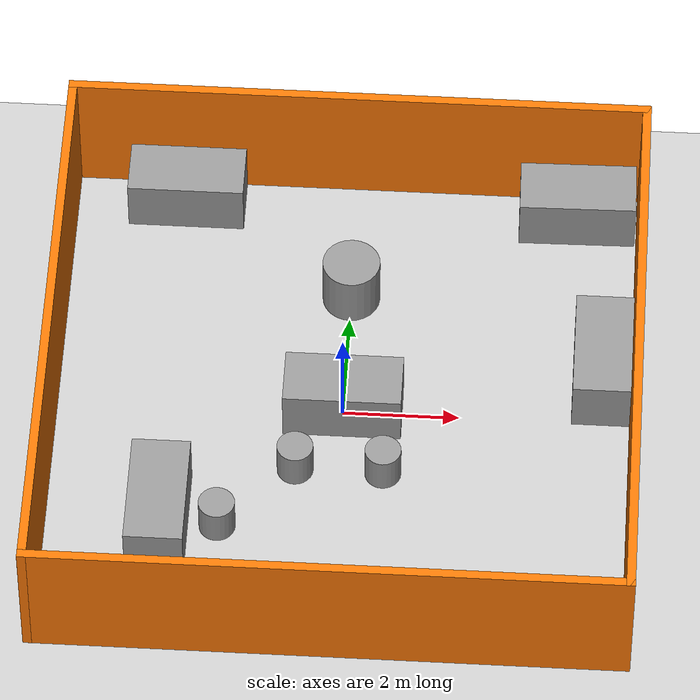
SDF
<sdf version="1.7">
 <world name="default">
  <light name="sun" type="directional">
   <pose>0 0 10 0 -0 0</pose>
   <diffuse>0.8 0.8 0.8 1</diffuse>
   <specular>0.2 0.2 0.2 1</specular>
   <attenuation>
    <range>1000</range>
    <constant>0.9</constant>
    <linear>0.01</linear>
    <quadratic>0.001</quadratic>
   </attenuation>
   <direction>-0.5 0.1 -0.9</direction>
   <spot><inner_angle>0</inner_angle><outer_angle>0</outer_angle><falloff>0</falloff></spot>
  </light>
  <model name="ground_plane">
   <static>1</static>
   <link name="link">
    <collision name="collision">
     <geometry><plane><normal>0 0 1</normal><size>100 100</size></plane></geometry>
     <surface>
      <contact><collide_bitmask>65535</collide_bitmask></contact>
      <friction><ode><mu>100</mu><mu2>50</mu2></ode></friction>
     </surface>
    </collision>
    <visual name="visual">
     <cast_shadows>0</cast_shadows>
     <geometry><plane><normal>0 0 1</normal><size>100 100</size></plane></geometry>
     <material>
      <script><uri>file://media/materials/scripts/gazebo.material</uri><name>Gazebo/Grey</name></script>
     </material>
    </visual>
   </link>
  </model>
  <gravity>0 0 -9.8</gravity>
  <magnetic_field>6e-06 2.3e-05 -4.2e-05</magnetic_field>
  <atmosphere type="adiabatic"/>
  <physics type="ode">
   <max_step_size>0.001</max_step_size>
   <real_time_factor>1</real_time_factor>
   <real_time_update_rate>1000</real_time_update_rate>
  </physics>
  <scene><ambient>0.4 0.4 0.4 1</ambient><background>0.7 0.7 0.7 1</background><shadows>1</shadows></scene>
  <spherical_coordinates>
   <surface_model>EARTH_WGS84</surface_model>
   <latitude_deg>0</latitude_deg>
   <longitude_deg>0</longitude_deg>
   <elevation>0</elevation>
   <heading_deg>0</heading_deg>
  </spherical_coordinates>
  <model name="room">
   <link name="Wall_1">
    <collision name="Wall_1_Collision">
     <geometry><box><size>10.15 0.15 2.5</size></box></geometry>
     <pose>0 0 1.25 0 -0 0</pose>
    </collision>
    <visual name="Wall_1_Visual">
     <pose>0 0 1.25 0 -0 0</pose>
     <geometry><box><size>10.15 0.15 2.5</size></box></geometry>
     <material>
      <script><uri>file://media/materials/scripts/gazebo.material</uri><name>Gazebo/Grey</name></script>
      <ambient>0.996078 0.47451 0.0196078 1</ambient>
     </material>
     <meta><layer>0</layer></meta>
    </visual>
    <pose>-5 0 0 0 -0 1.5708</pose>
   </link>
   <link name="Wall_2">
    <collision name="Wall_2_Collision">
     <geometry><box><size>10.15 0.15 2.5</size></box></geometry>
     <pose>0 0 1.25 0 -0 0</pose>
    </collision>
    <visual name="Wall_2_Visual">
     <pose>0 0 1.25 0 -0 0</pose>
     <geometry><box><size>10.15 0.15 2.5</size></box></geometry>
     <material>
      <script><uri>file://media/materials/scripts/gazebo.material</uri><name>Gazebo/Grey</name></script>
      <ambient>0.996078 0.47451 0.0196078 1</ambient>
     </material>
     <meta><layer>0</layer></meta>
    </visual>
    <pose>0 5 0 0 -0 0</pose>
   </link>
   <link name="Wall_8">
    <collision name="Wall_8_Collision">
     <geometry><box><size>10.15 0.15 2.5</size></box></geometry>
     <pose>0 0 1.25 0 -0 0</pose>
    </collision>
    <visual name="Wall_8_Visual">
     <pose>0 0 1.25 0 -0 0</pose>
     <geometry><box><size>10.15 0.15 2.5</size></box></geometry>
     <material>
      <script><uri>file://media/materials/scripts/gazebo.material</uri><name>Gazebo/Grey</name></script>
      <ambient>0.996078 0.47451 0.0196078 1</ambient>
     </material>
     <meta><layer>0</layer></meta>
    </visual>
    <pose>5 0 0 0 -0 -1.5708</pose>
   </link>
   <link name="Wall_9">
    <collision name="Wall_9_Collision">
     <geometry><box><size>10.15 0.15 2.5</size></box></geometry>
     <pose>0 0 1.25 0 -0 0</pose>
    </collision>
    <visual name="Wall_9_Visual">
     <pose>0 0 1.25 0 -0 0</pose>
     <geometry><box><size>10.15 0.15 2.5</size></box></geometry>
     <material>
      <script><uri>file://media/materials/scripts/gazebo.material</uri><name>Gazebo/Grey</name></script>
      <ambient>0.996078 0.47451 0.0196078 1</ambient>
     </material>
     <meta><layer>0</layer></meta>
    </visual>
    <pose>0 -5 0 0 -0 3.14159</pose>
   </link>
   <static>1</static>
  </model>
  <model name="unit_box">
   <pose>-2.99777 4.42403 0.5 0 0 -2.8e-05</pose>
   <link name="link">
    <inertial>
     <mass>1</mass>
     <inertia>
      <ixx>0.166667</ixx>
      <ixy>0</ixy>
      <ixz>0</ixz>
      <iyy>0.166667</iyy>
      <iyz>0</iyz>
      <izz>0.166667</izz>
     </inertia>
    </inertial>
    <collision name="collision"><geometry><box><size>2.02802 1 1</size></box></geometry></collision>
    <visual name="visual">
     <geometry><box><size>2.02802 1 1</size></box></geometry>
     <material>
      <script><name>Gazebo/Grey</name><uri>file://media/materials/scripts/gazebo.material</uri></script>
     </material>
    </visual>
   </link>
  </model>
  <model name="unit_box_clone">
   <pose>3.87441 4.40955 0.5 0 -0 0.014617</pose>
   <link name="link">
    <inertial>
     <mass>1</mass>
     <inertia>
      <ixx>0.166667</ixx>
      <ixy>0</ixy>
      <ixz>0</ixz>
      <iyy>0.166667</iyy>
      <iyz>0</iyz>
      <izz>0.166667</izz>
     </inertia>
    </inertial>
    <collision name="collision"><geometry><box><size>2.02802 1 1</size></box></geometry></collision>
    <visual name="visual">
     <geometry><box><size>2.02802 1 1</size></box></geometry>
     <material>
      <script><name>Gazebo/Grey</name><uri>file://media/materials/scripts/gazebo.material</uri></script>
     </material>
    </visual>
   </link>
  </model>
  <model name="unit_cylinder">
   <pose>-1e-06 2.5 0.499991 0 -0 0</pose>
   <link name="link">
    <inertial>
     <mass>1</mass>
     <inertia><ixx>0.145833</ixx><ixy>0</ixy><ixz>0</ixz><iyy>0.145833</iyy><iyz>0</iyz><izz>0.125</izz></inertia>
    </inertial>
    <collision name="collision">
     <geometry><cylinder><radius>0.5</radius><length>1</length></cylinder></geometry>
    </collision>
    <visual name="visual">
     <geometry><cylinder><radius>0.5</radius><length>1</length></cylinder></geometry>
     <material>
      <script><name>Gazebo/Grey</name><uri>file://media/materials/scripts/gazebo.material</uri></script>
     </material>
    </visual>
   </link>
  </model>
  <model name="unit_box_clone_0">
   <pose>0.000265 2.2e-05 0.499999 2e-06 0 4.5e-05</pose>
   <link name="link">
    <inertial>
     <mass>1</mass>
     <inertia>
      <ixx>0.166667</ixx>
      <ixy>0</ixy>
      <ixz>0</ixz>
      <iyy>0.166667</iyy>
      <iyz>0</iyz>
      <izz>0.166667</izz>
     </inertia>
    </inertial>
    <collision name="collision"><geometry><box><size>2.02802 1 1</size></box></geometry></collision>
    <visual name="visual">
     <geometry><box><size>2.02802 1 1</size></box></geometry>
     <material>
      <script><name>Gazebo/Grey</name><uri>file://media/materials/scripts/gazebo.material</uri></script>
     </material>
    </visual>
   </link>
  </model>
  <model name="unit_box_clone_1">
   <pose>-3 -2.50002 0.5 0 0 -1.57079</pose>
   <link name="link">
    <inertial>
     <mass>1</mass>
     <inertia>
      <ixx>0.166667</ixx>
      <ixy>0</ixy>
      <ixz>0</ixz>
      <iyy>0.166667</iyy>
      <iyz>0</iyz>
      <izz>0.166667</izz>
     </inertia>
    </inertial>
    <collision name="collision"><geometry><box><size>2.02802 1 1</size></box></geometry></collision>
    <visual name="visual">
     <geometry><box><size>2.02802 1 1</size></box></geometry>
     <material>
      <script><name>Gazebo/Grey</name><uri>file://media/materials/scripts/gazebo.material</uri></script>
     </material>
    </visual>
   </link>
  </model>
  <model name="unit_box_clone_2">
   <pose>4.42385 1.00049 0.5 0 -0 -1.57079</pose>
   <link name="link">
    <inertial>
     <mass>1</mass>
     <inertia>
      <ixx>0.166667</ixx>
      <ixy>0</ixy>
      <ixz>0</ixz>
      <iyy>0.166667</iyy>
      <iyz>0</iyz>
      <izz>0.166667</izz>
     </inertia>
    </inertial>
    <collision name="collision"><geometry><box><size>2.02802 1 1</size></box></geometry></collision>
    <visual name="visual">
     <geometry><box><size>2.02802 1 1</size></box></geometry>
     <material>
      <script><name>Gazebo/Grey</name><uri>file://media/materials/scripts/gazebo.material</uri></script>
     </material>
    </visual>
   </link>
  </model>
  <model name="unit_cylinder_0">
   <pose>0.75 -1.25 0.341186 -0 -0 -0</pose>
   <link name="link">
    <inertial>
     <mass>1</mass>
     <inertia><ixx>0.145833</ixx><ixy>0</ixy><ixz>0</ixz><iyy>0.145833</iyy><iyz>0</iyz><izz>0.125</izz></inertia>
    </inertial>
    <collision name="collision">
     <geometry><cylinder><radius>0.310932</radius><length>0.682391</length></cylinder></geometry>
    </collision>
    <visual name="visual">
     <geometry><cylinder><radius>0.310932</radius><length>0.682391</length></cylinder></geometry>
     <material>
      <script><name>Gazebo/Grey</name><uri>file://media/materials/scripts/gazebo.material</uri></script>
     </material>
    </visual>
   </link>
  </model>
  <model name="unit_cylinder_0_clone">
   <pose>-0.75 -1.25 0.341195 0 -0 0</pose>
   <link name="link">
    <inertial>
     <mass>1</mass>
     <inertia><ixx>0.145833</ixx><ixy>0</ixy><ixz>0</ixz><iyy>0.145833</iyy><iyz>0</iyz><izz>0.125</izz></inertia>
    </inertial>
    <collision name="collision">
     <geometry><cylinder><radius>0.310932</radius><length>0.682391</length></cylinder></geometry>
    </collision>
    <visual name="visual">
     <geometry><cylinder><radius>0.310932</radius><length>0.682391</length></cylinder></geometry>
     <material>
      <script><name>Gazebo/Grey</name><uri>file://media/materials/scripts/gazebo.material</uri></script>
     </material>
    </visual>
   </link>
  </model>
  <model name="unit_cylinder_0_clone_0">
   <pose>-2 -2.5 0.341186 -0 -0 -0</pose>
   <link name="link">
    <inertial>
     <mass>1</mass>
     <inertia><ixx>0.145833</ixx><ixy>0</ixy><ixz>0</ixz><iyy>0.145833</iyy><iyz>0</iyz><izz>0.125</izz></inertia>
    </inertial>
    <collision name="collision">
     <geometry><cylinder><radius>0.310932</radius><length>0.682391</length></cylinder></geometry>
    </collision>
    <visual name="visual">
     <geometry><cylinder><radius>0.310932</radius><length>0.682391</length></cylinder></geometry>
     <material>
      <script><name>Gazebo/Grey</name><uri>file://media/materials/scripts/gazebo.material</uri></script>
     </material>
    </visual>
   </link>
  </model>
 </world>
</sdf>
